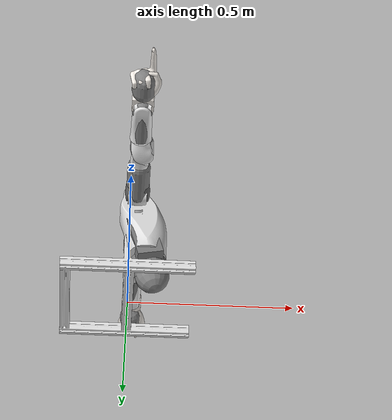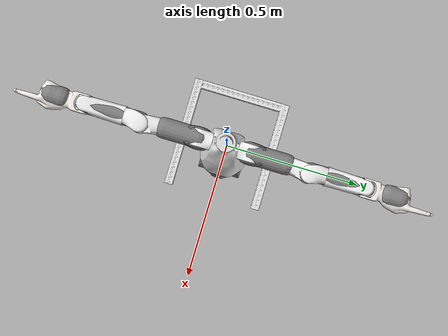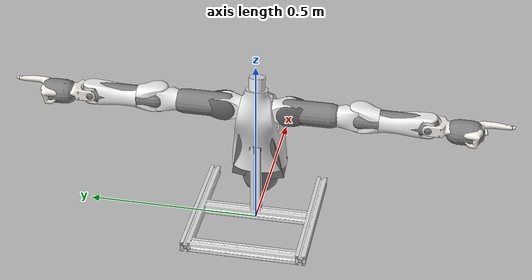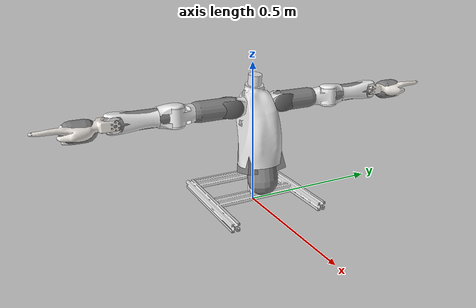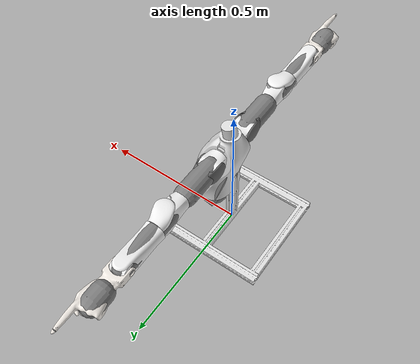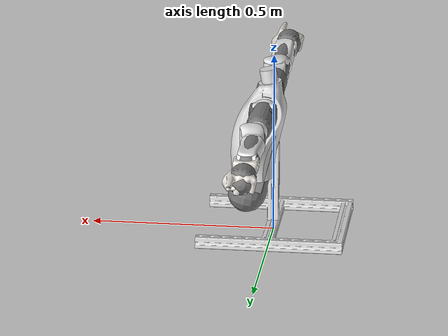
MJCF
<?xml version='1.0' encoding='utf-8'?>
<mujoco model="lite_bimanual">
  <!-- GENERATED by robot_assets from Onshape CAD. Do not edit by hand. Regenerate: robot-assets-generate lite_bimanual -->
  <compiler angle="radian" meshdir="../meshes/visual/" />

  <option timestep="0.001" integrator="implicitfast" solver="Newton" cone="elliptic" impratio="10" /><asset>
    <mesh name="chest_visual" content_type="model/stl" file="chest_visual.stl" />
    <mesh name="left_shoulder_pitch_visual" content_type="model/stl" file="left_shoulder_pitch_visual.stl" />
    <mesh name="left_shoulder_roll_visual" content_type="model/stl" file="left_shoulder_roll_visual.stl" />
    <mesh name="left_shoulder_yaw_visual" content_type="model/stl" file="left_shoulder_yaw_visual.stl" />
    <mesh name="left_elbow_pitch_visual" content_type="model/stl" file="left_elbow_pitch_visual.stl" />
    <mesh name="left_wrist_yaw_visual" content_type="model/stl" file="left_wrist_yaw_visual.stl" />
    <mesh name="left_wrist_roll_visual" content_type="model/stl" file="left_wrist_roll_visual.stl" />
    <mesh name="left_hand_visual" content_type="model/stl" file="left_hand_visual.stl" />
    <mesh name="right_shoulder_pitch_visual" content_type="model/stl" file="right_shoulder_pitch_visual.stl" />
    <mesh name="right_shoulder_roll_visual" content_type="model/stl" file="right_shoulder_roll_visual.stl" />
    <mesh name="right_shoulder_yaw_visual" content_type="model/stl" file="right_shoulder_yaw_visual.stl" />
    <mesh name="right_elbow_pitch_visual" content_type="model/stl" file="right_elbow_pitch_visual.stl" />
    <mesh name="right_wrist_yaw_visual" content_type="model/stl" file="right_wrist_yaw_visual.stl" />
    <mesh name="right_wrist_roll_visual" content_type="model/stl" file="right_wrist_roll_visual.stl" />
    <mesh name="right_hand_visual" content_type="model/stl" file="right_hand_visual.stl" />
  </asset>

  <worldbody>
    <body name="chest">
      <inertial pos="0.0223994 -6.1147e-08 0.218844" quat="0.991874 4.90987e-06 0.127224 -6.29771e-07" mass="5.67528" diaginertia="0.120398 0.116403 0.0510428" />
      <geom size="0.053 0.08" pos="0.055 0 0.18" quat="0.70256 0.0800467 -0.080047 -0.702563" type="capsule" />
      <geom size="0.02 0.04 0.09" pos="0.045 -0.04 0.22" quat="0.706863 0.0185097 -0.140975 -0.692913" type="box" />
      <geom size="0.02 0.04 0.09" pos="0.045 0.04 0.22" quat="0.69291 0.140974 -0.0185102 -0.706866" type="box" />
      <geom pos="0.0223994 -6.1147e-08 0.218844" type="mesh" contype="0" conaffinity="0" group="1" density="0" rgba="0.877556 0.877556 0.877556 1" mesh="chest_visual" />
      <body name="left_shoulder_pitch" pos="0.02 0.09 0.36" quat="0.766046 -0.642786 0 0">
        <inertial pos="-6.27e-10 -0.00168619 -0.00682299" quat="0.696279 -0.123273 0.123273 0.696279" mass="0.375" diaginertia="0.000238351 0.000232695 0.000194679" />
        <joint name="left_shoulder_pitch" pos="0 0 0" axis="0 0 1" range="-3.14159 0.785398" actuatorfrcrange="-17 17" frictionloss="0.1" armature="0.005" />
        <geom pos="-6.27e-10 -0.00168619 -0.00682299" quat="0.766046 0.642786 0 0" type="mesh" contype="0" conaffinity="0" group="1" density="0" rgba="0.933333 0.933333 0.933333 1" mesh="left_shoulder_pitch_visual" />
        <body name="left_shoulder_roll" quat="0.541674 0.454519 0.541677 0.454519">
          <inertial pos="1.04497e-07 0.0788914 2.17586e-07" quat="0.707115 0.707098 -6.06007e-05 5.54751e-05" mass="0.42" diaginertia="0.000535467 0.00050471 0.000208176" />
          <joint name="left_shoulder_roll" pos="0 0 0" axis="0 0 1" range="-1.5708 1.91986" actuatorfrcrange="-14 14" frictionloss="0.1" armature="0.002" />
          <geom pos="1.04497e-07 0.0788914 2.17586e-07" quat="0.707105 0 -0.707108 0" type="mesh" contype="0" conaffinity="0" group="1" density="0" rgba="0.392063 0.392063 0.392063 1" mesh="left_shoulder_roll_visual" />
          <body name="left_shoulder_yaw" pos="0 0.12 0" quat="0.499998 0.5 -0.5 0.500002">
            <inertial pos="0.00503665 -3.0465e-08 -0.0550993" quat="0.996504 2.04058e-06 -0.0835499 -3.31585e-06" mass="0.43" diaginertia="0.000502625 0.000498656 0.000210072" />
            <joint name="left_shoulder_yaw" pos="0 0 0" axis="0 0 1" range="-1.5708 1.5708" actuatorfrcrange="-14 14" frictionloss="0.1" armature="0.002" />
            <geom size="0.035 0.06" pos="0 0 0.06" quat="9.38184e-07 0.707105 0.707108 9.38187e-07" type="capsule" />
            <geom pos="0.00503665 -3.0465e-08 -0.0550993" quat="0.707105 -0.707108 0 0" type="mesh" contype="0" conaffinity="0" group="1" density="0" rgba="0.933333 0.933333 0.933333 1" mesh="left_shoulder_yaw_visual" />
            <body name="left_elbow_pitch" pos="0.01 0 -0.08" quat="0.707105 -0.707108 0 0">
              <inertial pos="-0.00956573 0.0258355 -2.70123e-07" quat="0.986546 0.00017609 0.000556095 0.163484" mass="0.11" diaginertia="0.000118876 9.45214e-05 7.93924e-05" />
              <joint name="left_elbow_pitch" pos="0 0 0" axis="0 0 1" range="-2.35619 0" actuatorfrcrange="-14 14" frictionloss="0.1" armature="0.002" />
              <geom pos="-0.00956573 0.0258355 -2.70123e-07" type="mesh" contype="0" conaffinity="0" group="1" density="0" rgba="0.933333 0.933333 0.933333 1" mesh="left_elbow_pitch_visual" />
              <body name="left_wrist_yaw" pos="-0.01 0.055 0" quat="0.707105 0.707108 0 0">
                <inertial pos="1.26198e-07 -2.64771e-05 -0.0592502" quat="0.705448 -2.28309e-05 2.81941e-05 0.708762" mass="0.54" diaginertia="0.000856128 0.000850281 0.000282296" />
                <joint name="left_wrist_yaw" pos="0 0 0" axis="0 0 1" range="-2.0944 1.5708" actuatorfrcrange="-5.5 5.5" frictionloss="0.1" armature="0.002" />
                <geom size="0.03 0.095" pos="0 0 -0.04" type="capsule" />
                <geom pos="1.26198e-07 -2.64771e-05 -0.0592502" quat="0.707105 -0.707108 0 0" type="mesh" contype="0" conaffinity="0" group="1" density="0" rgba="0.933333 0.933333 0.933333 1" mesh="left_wrist_yaw_visual" />
                <body name="left_wrist_roll" pos="0 0 -0.135" quat="0.707105 -0.707108 0 0">
                  <inertial pos="3.48e-10 1e-12 -2.12e-10" quat="0.500011 0.499989 0.500011 0.499989" mass="0.25" diaginertia="9.19125e-05 9.04076e-05 7.92687e-05" />
                  <joint name="left_wrist_roll" pos="0 0 0" axis="0 0 1" range="-0.698132 0.698132" actuatorfrcrange="-5.5 5.5" frictionloss="0.1" armature="0.002" />
                  <geom pos="3.48e-10 0 -2.12e-10" quat="1 0 0 0" type="mesh" contype="0" conaffinity="0" group="1" density="0" rgba="0.933333 0.933333 0.933333 1" mesh="left_wrist_roll_visual" />
                  <body name="left_hand" quat="0.707105 0 0.707108 0">
                    <inertial pos="0.0044138 0.1008 0.00606018" quat="0.656957 0.753902 0.0039914 -0.00473008" mass="0.167493" diaginertia="0.000456313 0.000413603 9.23022e-05" />
                    <joint name="left_wrist_pitch" pos="0 0 0" axis="0 0 1" range="-0.785398 0.785398" actuatorfrcrange="-5.5 5.5" frictionloss="0.1" armature="0.002" />
                    <geom size="0.006 0.03" pos="-0.007 0.194 0.0225" quat="0.499998 0.5 0.5 -0.500002" type="capsule" />
                    <geom size="0.035 0.02" pos="0.01 0.1 0.0005" quat="0.499998 0.5 0.5 -0.500002" type="capsule" />
                    <geom pos="0.0044138 0.1008 0.00606018" quat="0.707105 0 -0.707108 0" type="mesh" contype="0" conaffinity="0" group="1" density="0" rgba="0.935303 0.913041 0.886642 1" mesh="left_hand_visual" />
                    <body name="left_finger2_tip" pos="-0.007 0.225 0.0225" quat="0.499998 -0.5 -0.500002 0.5">
                      <inertial pos="0 0 0" mass="1e-09" diaginertia="0 0 0" />
                    </body>
                  </body>
                </body>
              </body>
            </body>
          </body>
        </body>
      </body>
      <body name="right_shoulder_pitch" pos="0.02 -0.09 0.36" quat="0.642787 -0.766045 0 0">
        <inertial pos="6.27e-10 -0.00168619 0.00682299" quat="0.696279 0.123273 -0.123273 0.696279" mass="0.375" diaginertia="0.000238351 0.000232695 0.000194679" />
        <joint name="right_shoulder_pitch" pos="0 0 0" axis="0 0 1" range="-3.14159 0.785398" actuatorfrcrange="-17 17" frictionloss="0.1" armature="0.005" />
        <geom pos="6.27e-10 -0.00168619 0.00682299" quat="0.642787 0.766045 0 0" type="mesh" contype="0" conaffinity="0" group="1" density="0" rgba="0.933333 0.933333 0.933333 1" mesh="right_shoulder_pitch_visual" />
        <body name="right_shoulder_roll" quat="0.541674 -0.454519 0.541677 -0.454519">
          <inertial pos="-1.01172e-07 0.0788914 2.6114e-08" quat="0.707107 0.707107 4.83224e-05 -4.25604e-05" mass="0.42" diaginertia="0.000535466 0.00050471 0.000208176" />
          <joint name="right_shoulder_roll" pos="0 0 0" axis="0 0 1" range="-1.91986 1.5708" actuatorfrcrange="-14 14" frictionloss="0.1" armature="0.002" />
          <geom pos="-1.01172e-07 0.0788914 2.6114e-08" quat="9.38184e-07 -0.707105 -9.38187e-07 -0.707108" type="mesh" contype="0" conaffinity="0" group="1" density="0" rgba="0.392063 0.392063 0.392063 1" mesh="right_shoulder_roll_visual" />
          <body name="right_shoulder_yaw" pos="0 0.12 0" quat="0.499998 0.5 -0.5 0.500002">
            <inertial pos="0.00503646 -5.8721e-08 -0.0550993" quat="0.996504 -1.23952e-06 -0.0835502 3.73219e-05" mass="0.43" diaginertia="0.000502628 0.000498658 0.000210071" />
            <joint name="right_shoulder_yaw" pos="0 0 0" axis="0 0 1" range="-1.5708 1.5708" actuatorfrcrange="-14 14" frictionloss="0.1" armature="0.002" />
            <geom size="0.035 0.06" pos="0 0 0.06" quat="9.38184e-07 0.707105 0.707108 9.38187e-07" type="capsule" />
            <geom pos="0.00503646 -5.8721e-08 -0.0550993" quat="0.707105 0.707108 0 0" type="mesh" contype="0" conaffinity="0" group="1" density="0" rgba="0.933333 0.933333 0.933333 1" mesh="right_shoulder_yaw_visual" />
            <body name="right_elbow_pitch" pos="0.01 0 -0.08" quat="0.707105 -0.707108 0 0">
              <inertial pos="-0.0095654 0.0258358 1.46047e-06" quat="0.986544 -0.000110648 -0.000508683 0.163496" mass="0.11" diaginertia="0.000118878 9.45223e-05 7.93932e-05" />
              <joint name="right_elbow_pitch" pos="0 0 0" axis="0 0 1" range="-2.35619 0" actuatorfrcrange="-14 14" frictionloss="0.1" armature="0.002" />
              <geom pos="-0.0095654 0.0258358 1.46047e-06" quat="1.32679e-06 -1 0 0" type="mesh" contype="0" conaffinity="0" group="1" density="0" rgba="0.933333 0.933333 0.933333 1" mesh="right_elbow_pitch_visual" />
              <body name="right_wrist_yaw" pos="-0.01 0.055 0" quat="0.707105 0.707108 0 0">
                <inertial pos="1.99324e-07 2.65767e-05 -0.0592501" quat="0.708838 2.88203e-05 -2.39464e-05 0.705371" mass="0.54" diaginertia="0.000856128 0.000850282 0.000282295" />
                <joint name="right_wrist_yaw" pos="0 0 0" axis="0 0 1" range="-1.5708 2.0944" actuatorfrcrange="-5.5 5.5" frictionloss="0.1" armature="0.002" />
                <geom size="0.03 0.095" pos="0 0 -0.04" quat="1.32679e-06 0 0 1" type="capsule" />
                <geom pos="1.99324e-07 2.65767e-05 -0.0592501" quat="0.707105 0.707108 0 0" type="mesh" contype="0" conaffinity="0" group="1" density="0" rgba="0.933333 0.933333 0.933333 1" mesh="right_wrist_yaw_visual" />
                <body name="right_wrist_roll" pos="0 0 -0.135" quat="0.707105 -0.707108 0 0">
                  <inertial pos="4.084e-09 -2e-12 -2.02e-10" quat="0.499585 0.500415 0.499585 0.500415" mass="0.25" diaginertia="9.19094e-05 9.04084e-05 7.92688e-05" />
                  <joint name="right_wrist_roll" pos="0 0 0" axis="0 0 1" range="-0.698132 0.698132" actuatorfrcrange="-5.5 5.5" frictionloss="0.1" armature="0.002" />
                  <geom pos="4.084e-09 -2e-12 -2.02e-10" quat="1.32679e-06 -1 0 0" type="mesh" contype="0" conaffinity="0" group="1" density="0" rgba="0.933333 0.933333 0.933333 1" mesh="right_wrist_roll_visual" />
                  <body name="right_hand" quat="0.707105 0 0.707108 0">
                    <inertial pos="-0.00441379 0.100801 0.0060602" quat="0.656957 0.753902 -0.0039883 0.0047276" mass="0.167493" diaginertia="0.000456312 0.000413602 9.23024e-05" />
                    <joint name="right_wrist_pitch" pos="0 0 0" axis="0 0 1" range="-0.785398 0.785398" actuatorfrcrange="-5.5 5.5" frictionloss="0.1" armature="0.002" />
                    <geom size="0.006 0.03" pos="0.007 0.194 0.0225" quat="0.499998 0.5 -0.5 0.500002" type="capsule" />
                    <geom size="0.035 0.02" pos="-0.01 0.1 0.0005" quat="0.499998 0.5 -0.5 0.500002" type="capsule" />
                    <geom pos="-0.00441379 0.100801 0.0060602" quat="9.38184e-07 0.707105 -9.38187e-07 0.707108" type="mesh" contype="0" conaffinity="0" group="1" density="0" rgba="0.935303 0.913041 0.886642 1" mesh="right_hand_visual" />
                    <body name="right_finger2_tip" pos="0.007 0.225 0.0225" quat="0.499998 0.5 0.500002 0.5">
                      <inertial pos="0 0 0" mass="1e-09" diaginertia="0 0 0" />
                    </body>
                  </body>
                </body>
              </body>
            </body>
          </body>
        </body>
      </body>
    </body>
  </worldbody>
<actuator><motor name="left_shoulder_pitch" joint="left_shoulder_pitch" forcerange="-17 17" /><motor name="left_shoulder_roll" joint="left_shoulder_roll" forcerange="-14 14" /><motor name="left_shoulder_yaw" joint="left_shoulder_yaw" forcerange="-14 14" /><motor name="left_elbow_pitch" joint="left_elbow_pitch" forcerange="-14 14" /><motor name="left_wrist_yaw" joint="left_wrist_yaw" forcerange="-5.5 5.5" /><motor name="left_wrist_roll" joint="left_wrist_roll" forcerange="-5.5 5.5" /><motor name="left_wrist_pitch" joint="left_wrist_pitch" forcerange="-5.5 5.5" /><motor name="right_shoulder_pitch" joint="right_shoulder_pitch" forcerange="-17 17" /><motor name="right_shoulder_roll" joint="right_shoulder_roll" forcerange="-14 14" /><motor name="right_shoulder_yaw" joint="right_shoulder_yaw" forcerange="-14 14" /><motor name="right_elbow_pitch" joint="right_elbow_pitch" forcerange="-14 14" /><motor name="right_wrist_yaw" joint="right_wrist_yaw" forcerange="-5.5 5.5" /><motor name="right_wrist_roll" joint="right_wrist_roll" forcerange="-5.5 5.5" /><motor name="right_wrist_pitch" joint="right_wrist_pitch" forcerange="-5.5 5.5" /></actuator></mujoco>
